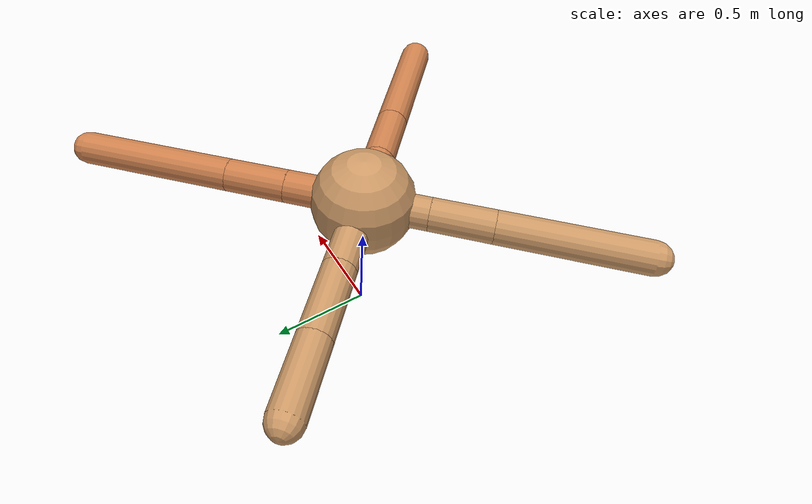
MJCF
<mujoco model="ant">
  <compiler angle="degree" coordinate="local" inertiafromgeom="true" />
  <option integrator="RK4" timestep="0.01" />
  <custom>
    <numeric data="0.0 0.0 0.55 1.0 0.0 0.0 0.0 0.0 1.0 0.0 -1.0 0.0 -1.0 0.0 1.0" name="init_qpos" />
  </custom>
  <default>
    <joint armature="1" damping="1" limited="true" />
    <geom conaffinity="0" condim="3" density="5.0" friction="1.5 0.1 0.1" margin="0.01" rgba="0.8 0.6 0.4 1" />
  </default>
  <worldbody>
    <body name="torso" pos="0 0 0.75">
      <geom name="torso_geom" pos="0 0 0" size="0.25" type="sphere" />

      <body name="front_left_leg" pos="0 0 0">
        <geom fromto="0.0 0.0 0.0 0.26721300902530054 0.26721300902530054 0.0" name="aux_1_geom" size="0.08" type="capsule" rgba=".8 .5 .3 1" />
        <body name="aux_1" pos="0.26721300902530054 0.26721300902530054 0.0">
          <joint axis="0 0 1" name="hip_1" pos="0.0 0.0 0.0" range="-40 40" type="hinge" />
          <geom fromto="0.0 0.0 0.0 0.20929413176745137 0.20929413176745137 0.0" name="left_leg_geom" size="0.08" type="capsule" rgba=".8 .5 .3 1" />
          <body pos="0.20929413176745137 0.20929413176745137 0.0" name="front_left_foot">
            <joint axis="-1 1 0" name="ankle_1" pos="0.0 0.0 0.0" range="30 100" type="hinge" />
            <geom fromto="0.0 0.0 0.0 0.5365520000762615 0.5365520000762615 0.0" name="left_ankle_geom" size="0.08" type="capsule" rgba=".8 .5 .3 1" />
          </body>
        </body>
      </body>
      <body name="front_right_leg" pos="0 0 0">
        <geom fromto="0.0 0.0 0.0 -0.29442029865959674 0.29442029865959674 0.0" name="aux_2_geom" size="0.08" type="capsule" />
        <body name="aux_2" pos="-0.29442029865959674 0.29442029865959674 0.0">
          <joint axis="0 0 1" name="hip_2" pos="0.0 0.0 0.0" range="-40 40" type="hinge" />
          <geom fromto="0.0 0.0 0.0 -0.2508281393400482 0.2508281393400482 0.0" name="right_leg_geom" size="0.08" type="capsule" />
          <body pos="-0.2508281393400482 0.2508281393400482 0.0" name="front_right_foot">
            <joint axis="1 1 0" name="ankle_2" pos="0.0 0.0 0.0" range="-100 -30" type="hinge" />
            <geom fromto="0.0 0.0 0.0 -0.244081375522052 0.244081375522052 0.0" name="right_ankle_geom" size="0.08" type="capsule" />
          </body>
        </body>
      </body>
      <body name="left_back_leg" pos="0 0 0">
        <geom fromto="0.0 0.0 0.0 -0.22295725715074377 -0.22295725715074377 0.0" name="aux_3_geom" size="0.08" type="capsule" />
        <body name="aux_3" pos="-0.22295725715074377 -0.22295725715074377 0.0">
          <joint axis="0 0 1" name="hip_3" pos="0.0 0.0 0.0" range="-40 40" type="hinge" />
          <geom fromto="0.0 0.0 0.0 -0.20995304742648957 -0.20995304742648957 0.0" name="back_leg_geom" size="0.08" type="capsule" />
          <body pos="-0.20995304742648957 -0.20995304742648957 0.0" name="left_back_foot">
            <joint axis="-1 1 0" name="ankle_3" pos="0.0 0.0 0.0" range="-100 -30" type="hinge" />
            <geom fromto="0.0 0.0 0.0 -0.48449677242464695 -0.48449677242464695 0.0" name="third_ankle_geom" size="0.08" type="capsule" />
          </body>
        </body>
      </body>
      <body name="right_back_leg" pos="0 0 0">
        <geom fromto="0.0 0.0 0.0 0.21445650930885202 -0.21445650930885202 0.0" name="aux_4_geom" size="0.08" type="capsule" rgba=".8 .5 .3 1" />
        <body name="aux_4" pos="0.21445650930885202 -0.21445650930885202 0.0">
          <joint axis="0 0 1" name="hip_4" pos="0.0 0.0 0.0" range="-40 40" type="hinge" />
          <geom fromto="0.0 0.0 0.0 0.21152175365889866 -0.21152175365889866 0.0" name="rightback_leg_geom" size="0.08" type="capsule" rgba=".8 .5 .3 1" />
          <body pos="0.21152175365889866 -0.21152175365889866 0.0" name="right_back_foot">
            <joint axis="1 1 0" name="ankle_4" pos="0.0 0.0 0.0" range="30 100" type="hinge" />
            <geom fromto="0.0 0.0 0.0 0.4482107424009334 -0.4482107424009334 0.0" name="fourth_ankle_geom" size="0.08" type="capsule" rgba=".8 .5 .3 1" />
          </body>
        </body>
      </body>
    </body>
  </worldbody>
  <actuator>
    <motor ctrllimited="true" ctrlrange="-1.0 1.0" joint="hip_4" gear="150" />
    <motor ctrllimited="true" ctrlrange="-1.0 1.0" joint="ankle_4" gear="150" />
    <motor ctrllimited="true" ctrlrange="-1.0 1.0" joint="hip_1" gear="150" />
    <motor ctrllimited="true" ctrlrange="-1.0 1.0" joint="ankle_1" gear="150" />
    <motor ctrllimited="true" ctrlrange="-1.0 1.0" joint="hip_2" gear="150" />
    <motor ctrllimited="true" ctrlrange="-1.0 1.0" joint="ankle_2" gear="150" />
    <motor ctrllimited="true" ctrlrange="-1.0 1.0" joint="hip_3" gear="150" />
    <motor ctrllimited="true" ctrlrange="-1.0 1.0" joint="ankle_3" gear="150" />
  </actuator>
</mujoco>
